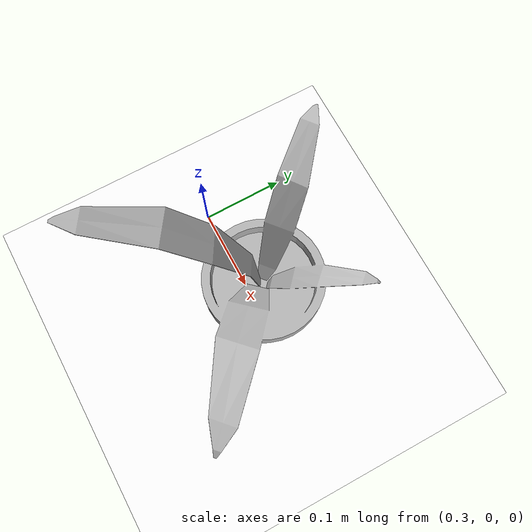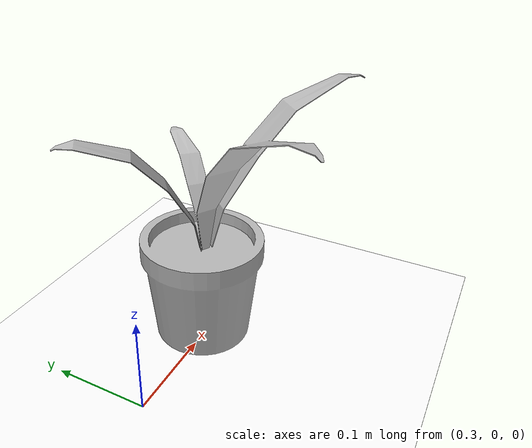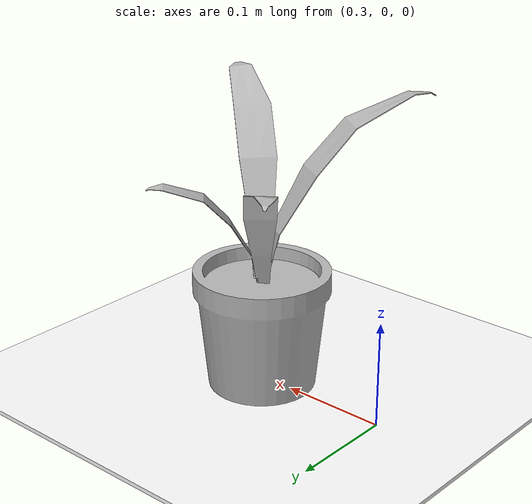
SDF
<?xml version="1.0" ?>
<sdf version="1.8">
  <world name="pro450_leaf_bench">
    <plugin filename="ignition-gazebo-physics-system" name="gz::sim::systems::Physics"/>
    <plugin filename="ignition-gazebo-user-commands-system" name="gz::sim::systems::UserCommands"/>
    <plugin filename="ignition-gazebo-scene-broadcaster-system" name="gz::sim::systems::SceneBroadcaster"/>
    <plugin filename="ignition-gazebo-sensors-system" name="gz::sim::systems::Sensors">
      <render_engine>ogre2</render_engine>
    </plugin>
    <plugin filename="ignition-gazebo-contact-system" name="gz::sim::systems::Contact"/>

    <physics name="default_physics" type="ignored">
      <max_step_size>0.001</max_step_size><real_time_factor>1.0</real_time_factor>
    </physics>
    <gravity>0 0 -9.81</gravity><magnetic_field>0 0 0</magnetic_field>
    <scene><ambient>0.6 0.6 0.6 1</ambient><background>0.85 0.90 0.95 1</background><shadows>true</shadows></scene>
    <light type="directional" name="sun">
      <cast_shadows>true</cast_shadows><pose>0 0 10 0 0 0</pose>
      <diffuse>0.8 0.8 0.8 1</diffuse><specular>0.2 0.2 0.2 1</specular><direction>-0.5 0.2 -0.9</direction>
    </light>

    <include><uri>model://calibration_floor</uri></include>
    <include>
      <uri>model://simple_potted_plant_pro450</uri><name>plant_in_front_of_arm</name>
      <pose>0.425 0.00 0 0 0 0</pose>
    </include>
  </world>
</sdf>

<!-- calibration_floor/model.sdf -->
<sdf version="1.8">
  <model name="calibration_floor">
    <static>true</static>
    <link name="floor_link">
      <collision name="floor_collision">
        <geometry>
          <plane>
            <normal>0 0 1</normal>
            <size>4 4</size>
          </plane>
        </geometry>
        <surface>
          <friction>
            <ode>
              <mu>100</mu>
              <mu2>50</mu2>
            </ode>
          </friction>
        </surface>
      </collision>
      <visual name="floor_visual">
        <cast_shadows>false</cast_shadows>
        <geometry>
          <plane>
            <normal>0 0 1</normal>
            <size>4 4</size>
          </plane>
        </geometry>
        <material>
          <ambient>1 1 1 1</ambient>
          <diffuse>1 1 1 1</diffuse>
          <specular>0.1 0.1 0.1 1</specular>
          <pbr>
            <metal>
              <albedo_map>materials/textures/calibration_floor.png</albedo_map>
              <roughness>0.8</roughness>
              <metalness>0.0</metalness>
            </metal>
          </pbr>
        </material>
      </visual>
    </link>
  </model>
</sdf>

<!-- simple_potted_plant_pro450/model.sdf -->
<sdf version="1.6">
  <model name="simple_potted_plant_pro450">
    <static>true</static>
    <self_collide>false</self_collide>
    <link name="plant_link">
      <gravity>false</gravity>
      <visual name="plant_visual">
        <pose>0 0 5e-05 1.570796327 0 0</pose>
        <geometry>
          <mesh>
            <uri>model://simple_potted_plant/meshes/FlowerPot_fortress.obj</uri>
            <scale>0.05 0.05 0.05</scale>
          </mesh>
        </geometry>
      </visual>
      <collision name="pot_collision">
        <pose>0 0 0.058 0 0 0</pose>
        <geometry>
          <cylinder>
            <radius>0.06</radius>
            <length>0.116</length>
          </cylinder>
        </geometry>
        <surface>
          <friction>
            <ode>
              <mu>0.8</mu>
              <mu2>0.8</mu2>
            </ode>
          </friction>
          <contact>
            <ode>
              <kp>1000000</kp>
              <kd>10</kd>
              <max_vel>0.01</max_vel>
              <min_depth>0.001</min_depth>
            </ode>
          </contact>
        </surface>
      </collision>
      <collision name="leaf_1_segment_4_collision">
        <pose>-0.04925 -0.0815 0.25 0 -0.4922 -2.103</pose>
        <geometry>
          <box>
            <size>0.06325 0.0325 0.004</size>
          </box>
        </geometry>
        <max_contacts>20</max_contacts>
        <surface>
          <friction>
            <ode>
              <mu>0.6</mu>
              <mu2>0.6</mu2>
            </ode>
          </friction>
          <contact>
            <ode>
              <kp>200000</kp>
              <kd>20</kd>
              <max_vel>0.005</max_vel>
              <min_depth>0.0005</min_depth>
            </ode>
          </contact>
        </surface>
      </collision>
      <collision name="leaf_2_segment_4_collision">
        <pose>0.08875 -0.07 0.25125 0 -0.4632 -0.6889</pose>
        <geometry>
          <box>
            <size>0.06555 0.0325 0.004</size>
          </box>
        </geometry>
        <max_contacts>20</max_contacts>
        <surface>
          <friction>
            <ode>
              <mu>0.6</mu>
              <mu2>0.6</mu2>
            </ode>
          </friction>
          <contact>
            <ode>
              <kp>200000</kp>
              <kd>20</kd>
              <max_vel>0.005</max_vel>
              <min_depth>0.0005</min_depth>
            </ode>
          </contact>
        </surface>
      </collision>
      <collision name="leaf_3_segment_4_collision">
        <pose>0.054 0.055 0.19125 0 -0.3591 0.8491</pose>
        <geometry>
          <box>
            <size>0.03955 0.0275 0.004</size>
          </box>
        </geometry>
        <max_contacts>20</max_contacts>
        <surface>
          <friction>
            <ode>
              <mu>0.6</mu>
              <mu2>0.6</mu2>
            </ode>
          </friction>
          <contact>
            <ode>
              <kp>200000</kp>
              <kd>20</kd>
              <max_vel>0.005</max_vel>
              <min_depth>0.0005</min_depth>
            </ode>
          </contact>
        </surface>
      </collision>
      <collision name="leaf_4_segment_4_collision">
        <pose>-0.05175 0.0725 0.21825 0 -0.4283 2.3036</pose>
        <geometry>
          <box>
            <size>0.05575 0.03 0.004</size>
          </box>
        </geometry>
        <max_contacts>20</max_contacts>
        <surface>
          <friction>
            <ode>
              <mu>0.6</mu>
              <mu2>0.6</mu2>
            </ode>
          </friction>
          <contact>
            <ode>
              <kp>200000</kp>
              <kd>20</kd>
              <max_vel>0.005</max_vel>
              <min_depth>0.0005</min_depth>
            </ode>
          </contact>
        </surface>
      </collision>
      <collision name="leaf_1_segment_1_collision">
        <pose>0.00125 -0.00125 0.12125 0 -1.3262 -2.3562</pose>
        <geometry>
          <box>
            <size>0.0478 0.01 0.004</size>
          </box>
        </geometry>
        <max_contacts>20</max_contacts>
        <surface>
          <friction>
            <ode>
              <mu>0.6</mu>
              <mu2>0.6</mu2>
            </ode>
          </friction>
          <contact>
            <ode>
              <kp>200000</kp>
              <kd>20</kd>
              <max_vel>0.005</max_vel>
              <min_depth>0.0005</min_depth>
            </ode>
          </contact>
        </surface>
      </collision>
      <collision name="leaf_1_segment_2_collision">
        <pose>-0.00825 -0.015 0.1675 0 -1.1385 -2.0926</pose>
        <geometry>
          <box>
            <size>0.05905 0.0175 0.004</size>
          </box>
        </geometry>
        <max_contacts>20</max_contacts>
        <surface>
          <friction>
            <ode>
              <mu>0.6</mu>
              <mu2>0.6</mu2>
            </ode>
          </friction>
          <contact>
            <ode>
              <kp>200000</kp>
              <kd>20</kd>
              <max_vel>0.005</max_vel>
              <min_depth>0.0005</min_depth>
            </ode>
          </contact>
        </surface>
      </collision>
      <collision name="leaf_1_segment_3_collision">
        <pose>-0.025 -0.042 0.21425 0 -0.8211 -2.1451</pose>
        <geometry>
          <box>
            <size>0.06345 0.025 0.004</size>
          </box>
        </geometry>
        <max_contacts>20</max_contacts>
        <surface>
          <friction>
            <ode>
              <mu>0.6</mu>
              <mu2>0.6</mu2>
            </ode>
          </friction>
          <contact>
            <ode>
              <kp>200000</kp>
              <kd>20</kd>
              <max_vel>0.005</max_vel>
              <min_depth>0.0005</min_depth>
            </ode>
          </contact>
        </surface>
      </collision>
      <collision name="leaf_1_segment_5_collision">
        <pose>-0.0705 -0.1205 0.2645 0 -0.0273 -2.0222</pose>
        <geometry>
          <box>
            <size>0.0407 0.0225 0.004</size>
          </box>
        </geometry>
        <max_contacts>20</max_contacts>
        <surface>
          <friction>
            <ode>
              <mu>0.6</mu>
              <mu2>0.6</mu2>
            </ode>
          </friction>
          <contact>
            <ode>
              <kp>200000</kp>
              <kd>20</kd>
              <max_vel>0.005</max_vel>
              <min_depth>0.0005</min_depth>
            </ode>
          </contact>
        </surface>
      </collision>
      <collision name="leaf_2_segment_1_collision">
        <pose>0.01525 -0.00125 0.12025 0 -1.3767 -1.0304</pose>
        <geometry>
          <box>
            <size>0.04935 0.01 0.004</size>
          </box>
        </geometry>
        <max_contacts>20</max_contacts>
        <surface>
          <friction>
            <ode>
              <mu>0.6</mu>
              <mu2>0.6</mu2>
            </ode>
          </friction>
          <contact>
            <ode>
              <kp>200000</kp>
              <kd>20</kd>
              <max_vel>0.005</max_vel>
              <min_depth>0.0005</min_depth>
            </ode>
          </contact>
        </surface>
      </collision>
      <collision name="leaf_2_segment_2_collision">
        <pose>0.0275 -0.01625 0.16875 0 -1.0502 -0.8442</pose>
        <geometry>
          <box>
            <size>0.0645 0.0175 0.004</size>
          </box>
        </geometry>
        <max_contacts>20</max_contacts>
        <surface>
          <friction>
            <ode>
              <mu>0.6</mu>
              <mu2>0.6</mu2>
            </ode>
          </friction>
          <contact>
            <ode>
              <kp>200000</kp>
              <kd>20</kd>
              <max_vel>0.005</max_vel>
              <min_depth>0.0005</min_depth>
            </ode>
          </contact>
        </surface>
      </collision>
      <collision name="leaf_2_segment_3_collision">
        <pose>0.0525 -0.04 0.21625 0 -0.8277 -0.6947</pose>
        <geometry>
          <box>
            <size>0.0617 0.025 0.004</size>
          </box>
        </geometry>
        <max_contacts>20</max_contacts>
        <surface>
          <friction>
            <ode>
              <mu>0.6</mu>
              <mu2>0.6</mu2>
            </ode>
          </friction>
          <contact>
            <ode>
              <kp>200000</kp>
              <kd>20</kd>
              <max_vel>0.005</max_vel>
              <min_depth>0.0005</min_depth>
            </ode>
          </contact>
        </surface>
      </collision>
      <collision name="leaf_2_segment_5_collision">
        <pose>0.12275 -0.0965 0.26375 0 0.0799 -0.6147</pose>
        <geometry>
          <box>
            <size>0.0353 0.0225 0.004</size>
          </box>
        </geometry>
        <max_contacts>20</max_contacts>
        <surface>
          <friction>
            <ode>
              <mu>0.6</mu>
              <mu2>0.6</mu2>
            </ode>
          </friction>
          <contact>
            <ode>
              <kp>200000</kp>
              <kd>20</kd>
              <max_vel>0.005</max_vel>
              <min_depth>0.0005</min_depth>
            </ode>
          </contact>
        </surface>
      </collision>
      <collision name="leaf_3_segment_1_collision">
        <pose>0.01125 0.0095 0.11175 0 -1.3745 0.4993</pose>
        <geometry>
          <box>
            <size>0.0361 0.009 0.004</size>
          </box>
        </geometry>
        <max_contacts>20</max_contacts>
        <surface>
          <friction>
            <ode>
              <mu>0.6</mu>
              <mu2>0.6</mu2>
            </ode>
          </friction>
          <contact>
            <ode>
              <kp>200000</kp>
              <kd>20</kd>
              <max_vel>0.005</max_vel>
              <min_depth>0.0005</min_depth>
            </ode>
          </contact>
        </surface>
      </collision>
      <collision name="leaf_3_segment_2_collision">
        <pose>0.02075 0.018 0.14375 0 -1.0315 0.8036</pose>
        <geometry>
          <box>
            <size>0.04185 0.015 0.004</size>
          </box>
        </geometry>
        <max_contacts>20</max_contacts>
        <surface>
          <friction>
            <ode>
              <mu>0.6</mu>
              <mu2>0.6</mu2>
            </ode>
          </friction>
          <contact>
            <ode>
              <kp>200000</kp>
              <kd>20</kd>
              <max_vel>0.005</max_vel>
              <min_depth>0.0005</min_depth>
            </ode>
          </contact>
        </surface>
      </collision>
      <collision name="leaf_3_segment_3_collision">
        <pose>0.03525 0.03375 0.1725 0 -0.8189 0.8459</pose>
        <geometry>
          <box>
            <size>0.03825 0.0225 0.004</size>
          </box>
        </geometry>
        <max_contacts>20</max_contacts>
        <surface>
          <friction>
            <ode>
              <mu>0.6</mu>
              <mu2>0.6</mu2>
            </ode>
          </friction>
          <contact>
            <ode>
              <kp>200000</kp>
              <kd>20</kd>
              <max_vel>0.005</max_vel>
              <min_depth>0.0005</min_depth>
            </ode>
          </contact>
        </surface>
      </collision>
      <collision name="leaf_3_segment_5_collision">
        <pose>0.06975 0.075 0.197 0 0.0563 1.0062</pose>
        <geometry>
          <box>
            <size>0.0218 0.0175 0.004</size>
          </box>
        </geometry>
        <max_contacts>20</max_contacts>
        <surface>
          <friction>
            <ode>
              <mu>0.6</mu>
              <mu2>0.6</mu2>
            </ode>
          </friction>
          <contact>
            <ode>
              <kp>200000</kp>
              <kd>20</kd>
              <max_vel>0.005</max_vel>
              <min_depth>0.0005</min_depth>
            </ode>
          </contact>
        </surface>
      </collision>
      <collision name="leaf_4_segment_1_collision">
        <pose>0.00125 0.009 0.10825 0 -1.3564 1.8737</pose>
        <geometry>
          <box>
            <size>0.0434 0.009 0.004</size>
          </box>
        </geometry>
        <max_contacts>20</max_contacts>
        <surface>
          <friction>
            <ode>
              <mu>0.6</mu>
              <mu2>0.6</mu2>
            </ode>
          </friction>
          <contact>
            <ode>
              <kp>200000</kp>
              <kd>20</kd>
              <max_vel>0.005</max_vel>
              <min_depth>0.0005</min_depth>
            </ode>
          </contact>
        </surface>
      </collision>
      <collision name="leaf_4_segment_2_collision">
        <pose>-0.0075 0.02275 0.15 0 -1.0705 2.2265</pose>
        <geometry>
          <box>
            <size>0.0553 0.016 0.004</size>
          </box>
        </geometry>
        <max_contacts>20</max_contacts>
        <surface>
          <friction>
            <ode>
              <mu>0.6</mu>
              <mu2>0.6</mu2>
            </ode>
          </friction>
          <contact>
            <ode>
              <kp>200000</kp>
              <kd>20</kd>
              <max_vel>0.005</max_vel>
              <min_depth>0.0005</min_depth>
            </ode>
          </contact>
        </surface>
      </collision>
      <collision name="leaf_4_segment_3_collision">
        <pose>-0.0255 0.04375 0.19 0 -0.8495 2.3217</pose>
        <geometry>
          <box>
            <size>0.0506 0.024 0.004</size>
          </box>
        </geometry>
        <max_contacts>20</max_contacts>
        <surface>
          <friction>
            <ode>
              <mu>0.6</mu>
              <mu2>0.6</mu2>
            </ode>
          </friction>
          <contact>
            <ode>
              <kp>200000</kp>
              <kd>20</kd>
              <max_vel>0.005</max_vel>
              <min_depth>0.0005</min_depth>
            </ode>
          </contact>
        </surface>
      </collision>
      <collision name="leaf_4_segment_5_collision">
        <pose>-0.07675 0.09875 0.2275 0 0.1173 2.384</pose>
        <geometry>
          <box>
            <size>0.02965 0.02 0.004</size>
          </box>
        </geometry>
        <max_contacts>20</max_contacts>
        <surface>
          <friction>
            <ode>
              <mu>0.6</mu>
              <mu2>0.6</mu2>
            </ode>
          </friction>
          <contact>
            <ode>
              <kp>200000</kp>
              <kd>20</kd>
              <max_vel>0.005</max_vel>
              <min_depth>0.0005</min_depth>
            </ode>
          </contact>
        </surface>
      </collision>
      <sensor name="leaf_1_segment_4_contact_sensor" type="contact">
        <always_on>true</always_on>
        <update_rate>100</update_rate>
        <contact>
          <collision>leaf_1_segment_4_collision</collision>
          <topic>/plant/leaf_1_contacts_gz</topic>
        </contact>
      </sensor>
      <sensor name="leaf_2_segment_4_contact_sensor" type="contact">
        <always_on>true</always_on>
        <update_rate>100</update_rate>
        <contact>
          <collision>leaf_2_segment_4_collision</collision>
          <topic>/plant/leaf_2_contacts_gz</topic>
        </contact>
      </sensor>
      <sensor name="leaf_3_segment_4_contact_sensor" type="contact">
        <always_on>true</always_on>
        <update_rate>100</update_rate>
        <contact>
          <collision>leaf_3_segment_4_collision</collision>
          <topic>/plant/leaf_3_contacts_gz</topic>
        </contact>
      </sensor>
      <sensor name="leaf_4_segment_4_contact_sensor" type="contact">
        <always_on>true</always_on>
        <update_rate>100</update_rate>
        <contact>
          <collision>leaf_4_segment_4_collision</collision>
          <topic>/plant/leaf_4_contacts_gz</topic>
        </contact>
      </sensor>
      <sensor name="leaf_1_segment_1_contact_sensor" type="contact">
        <always_on>true</always_on>
        <update_rate>100</update_rate>
        <contact>
          <collision>leaf_1_segment_1_collision</collision>
          <topic>/plant/leaf_1_contacts_gz</topic>
        </contact>
      </sensor>
      <sensor name="leaf_1_segment_2_contact_sensor" type="contact">
        <always_on>true</always_on>
        <update_rate>100</update_rate>
        <contact>
          <collision>leaf_1_segment_2_collision</collision>
          <topic>/plant/leaf_1_contacts_gz</topic>
        </contact>
      </sensor>
      <sensor name="leaf_1_segment_3_contact_sensor" type="contact">
        <always_on>true</always_on>
        <update_rate>100</update_rate>
        <contact>
          <collision>leaf_1_segment_3_collision</collision>
          <topic>/plant/leaf_1_contacts_gz</topic>
        </contact>
      </sensor>
      <sensor name="leaf_1_segment_5_contact_sensor" type="contact">
        <always_on>true</always_on>
        <update_rate>100</update_rate>
        <contact>
          <collision>leaf_1_segment_5_collision</collision>
          <topic>/plant/leaf_1_contacts_gz</topic>
        </contact>
      </sensor>
      <sensor name="leaf_2_segment_1_contact_sensor" type="contact">
        <always_on>true</always_on>
        <update_rate>100</update_rate>
        <contact>
          <collision>leaf_2_segment_1_collision</collision>
          <topic>/plant/leaf_2_contacts_gz</topic>
        </contact>
      </sensor>
      <sensor name="leaf_2_segment_2_contact_sensor" type="contact">
        <always_on>true</always_on>
        <update_rate>100</update_rate>
        <contact>
          <collision>leaf_2_segment_2_collision</collision>
          <topic>/plant/leaf_2_contacts_gz</topic>
        </contact>
      </sensor>
      <sensor name="leaf_2_segment_3_contact_sensor" type="contact">
        <always_on>true</always_on>
        <update_rate>100</update_rate>
        <contact>
          <collision>leaf_2_segment_3_collision</collision>
          <topic>/plant/leaf_2_contacts_gz</topic>
        </contact>
      </sensor>
      <sensor name="leaf_2_segment_5_contact_sensor" type="contact">
        <always_on>true</always_on>
        <update_rate>100</update_rate>
        <contact>
          <collision>leaf_2_segment_5_collision</collision>
          <topic>/plant/leaf_2_contacts_gz</topic>
        </contact>
      </sensor>
      <sensor name="leaf_3_segment_1_contact_sensor" type="contact">
        <always_on>true</always_on>
        <update_rate>100</update_rate>
        <contact>
          <collision>leaf_3_segment_1_collision</collision>
          <topic>/plant/leaf_3_contacts_gz</topic>
        </contact>
      </sensor>
      <sensor name="leaf_3_segment_2_contact_sensor" type="contact">
        <always_on>true</always_on>
        <update_rate>100</update_rate>
        <contact>
          <collision>leaf_3_segment_2_collision</collision>
          <topic>/plant/leaf_3_contacts_gz</topic>
        </contact>
      </sensor>
      <sensor name="leaf_3_segment_3_contact_sensor" type="contact">
        <always_on>true</always_on>
        <update_rate>100</update_rate>
        <contact>
          <collision>leaf_3_segment_3_collision</collision>
          <topic>/plant/leaf_3_contacts_gz</topic>
        </contact>
      </sensor>
      <sensor name="leaf_3_segment_5_contact_sensor" type="contact">
        <always_on>true</always_on>
        <update_rate>100</update_rate>
        <contact>
          <collision>leaf_3_segment_5_collision</collision>
          <topic>/plant/leaf_3_contacts_gz</topic>
        </contact>
      </sensor>
      <sensor name="leaf_4_segment_1_contact_sensor" type="contact">
        <always_on>true</always_on>
        <update_rate>100</update_rate>
        <contact>
          <collision>leaf_4_segment_1_collision</collision>
          <topic>/plant/leaf_4_contacts_gz</topic>
        </contact>
      </sensor>
      <sensor name="leaf_4_segment_2_contact_sensor" type="contact">
        <always_on>true</always_on>
        <update_rate>100</update_rate>
        <contact>
          <collision>leaf_4_segment_2_collision</collision>
          <topic>/plant/leaf_4_contacts_gz</topic>
        </contact>
      </sensor>
      <sensor name="leaf_4_segment_3_contact_sensor" type="contact">
        <always_on>true</always_on>
        <update_rate>100</update_rate>
        <contact>
          <collision>leaf_4_segment_3_collision</collision>
          <topic>/plant/leaf_4_contacts_gz</topic>
        </contact>
      </sensor>
      <sensor name="leaf_4_segment_5_contact_sensor" type="contact">
        <always_on>true</always_on>
        <update_rate>100</update_rate>
        <contact>
          <collision>leaf_4_segment_5_collision</collision>
          <topic>/plant/leaf_4_contacts_gz</topic>
        </contact>
      </sensor>
    </link>
  </model>
</sdf>
